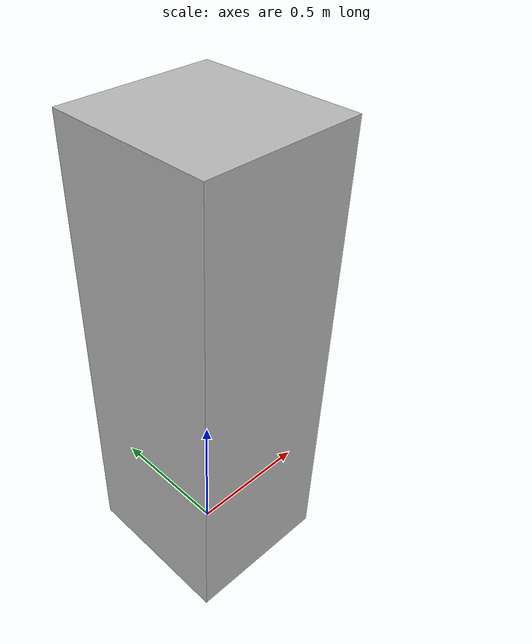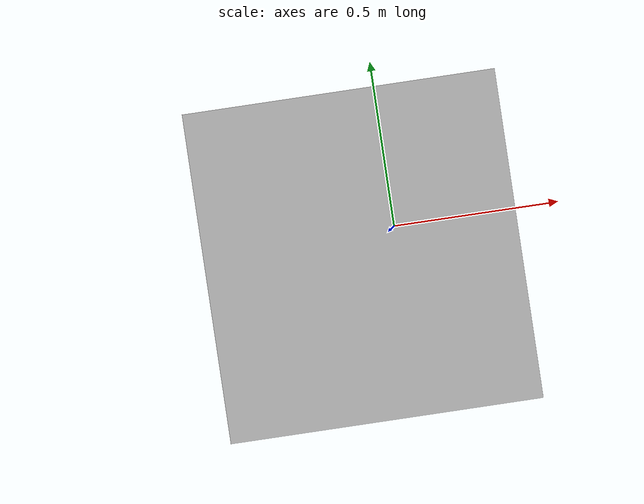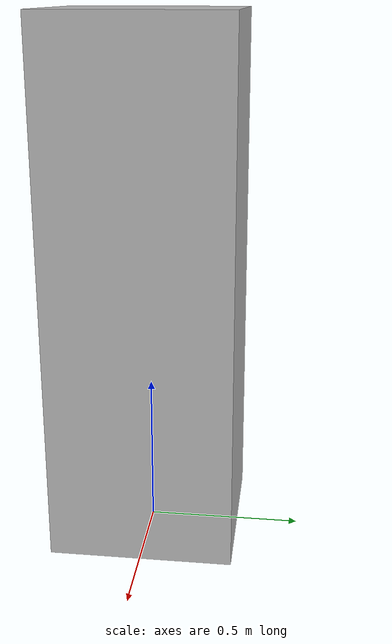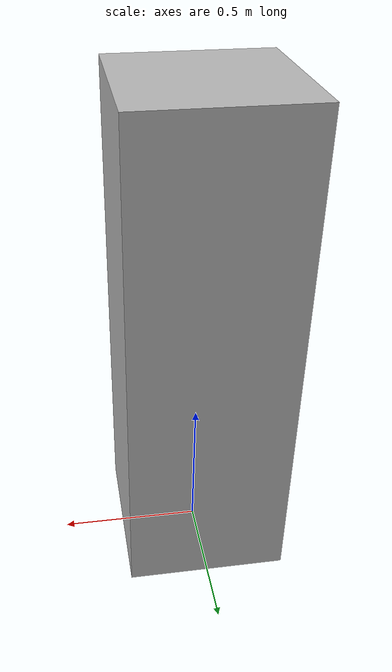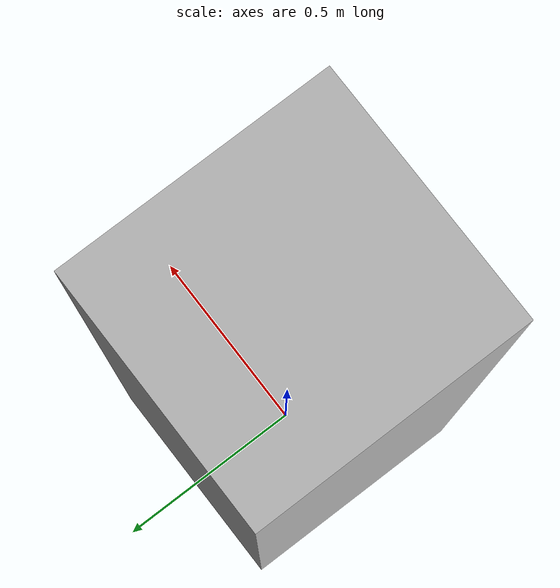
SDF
<?xml version="1.0"?>
<sdf version="1.6">
  <model name="rwc2023/fridge">
    <link name="1_link">
      <collision name="1_col">
        <geometry>
          <box>
            <size>0.56 0.59 1.70</size>
          </box>
        </geometry>
      </collision>
      <visual name="1_vis">
        <geometry>
          <box>
            <size>0.56 0.59 1.70</size>
          </box>
        </geometry>
      </visual>
      <pose>0.0 0.0 0.85 0 0 0</pose>
    </link>
    <link name="on_top_of">
      <virtual_volume name="on_top_of_vv">
        <geometry>
          <box>
            <size>0.56 0.59 0.25</size>
          </box>
        </geometry>
        <pose>0.0 0.0 1.825 0 0 0</pose>
      </virtual_volume>
    </link>
    <link name="in_front_of">
      <virtual_volume name="in_front_of_vv">
        <geometry>
          <box>
            <size>0.2 0.3524 0.01</size>
          </box>
        </geometry>
        <pose>0.825 0.0 0.005 0 0 0</pose>
      </virtual_volume>
    </link>
    <static>true</static>
  </model>
</sdf>
